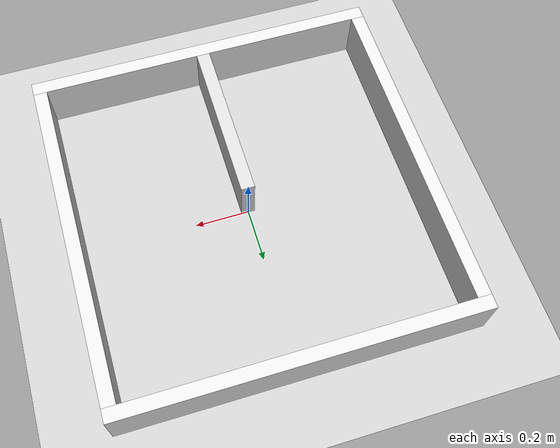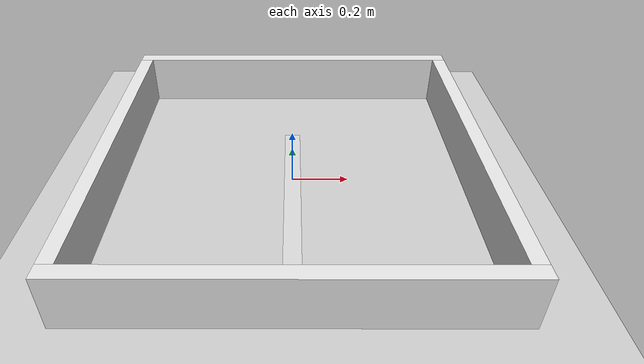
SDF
<?xml version="1.0" ?>
<sdf version="1.9">
  <world name="hermes_world">

    <!-- ── Core Gazebo Harmonic system plugins ───────────────────────────── -->
    <plugin filename="gz-sim-physics-system"
            name="gz::sim::systems::Physics"/>
    <plugin filename="gz-sim-user-commands-system"
            name="gz::sim::systems::UserCommands"/>
    <plugin filename="gz-sim-scene-broadcaster-system"
            name="gz::sim::systems::SceneBroadcaster"/>
    <!-- Sensors plugin: required for LiDAR -->
    <plugin filename="gz-sim-sensors-system"
            name="gz::sim::systems::Sensors"/>
    <plugin filename="gz-sim-contact-system"
            name="gz::sim::systems::Contact"/>

    <!-- ── Physics ───────────────────────────────────────────────────────── -->
    <physics name="1ms" type="ignored">
      <max_step_size>0.001</max_step_size>
      <real_time_factor>1.0</real_time_factor>
    </physics>

    <!-- ── Gravity ───────────────────────────────────────────────────────── -->
    <gravity>0 0 -9.8</gravity>

    <!-- ── Lighting ──────────────────────────────────────────────────────── -->
    <light type="directional" name="sun">
      <cast_shadows>true</cast_shadows>
      <pose>0 0 10 0 0 0</pose>
      <diffuse>0.8 0.8 0.8 1</diffuse>
      <specular>0.2 0.2 0.2 1</specular>
      <attenuation>
        <range>1000</range>
        <constant>0.9</constant>
        <linear>0.01</linear>
        <quadratic>0.001</quadratic>
      </attenuation>
      <direction>-0.5 0.1 -0.9</direction>
    </light>

    <!-- ── Ground plane ──────────────────────────────────────────────────── -->
    <model name="ground_plane">
      <static>true</static>
      <link name="link">
        <collision name="collision">
          <geometry>
            <plane>
              <normal>0 0 1</normal>
              <size>20 20</size>
            </plane>
          </geometry>
          <surface>
            <friction>
              <ode>
                <mu>100</mu>
                <mu2>50</mu2>
              </ode>
            </friction>
          </surface>
        </collision>
        <visual name="visual">
          <geometry>
            <plane>
              <normal>0 0 1</normal>
              <size>20 20</size>
            </plane>
          </geometry>
          <material>
            <ambient>0.8 0.8 0.8 1</ambient>
            <diffuse>0.8 0.8 0.8 1</diffuse>
            <specular>0.8 0.8 0.8 1</specular>
          </material>
        </visual>
      </link>
    </model>

    <!-- North wall  y = +0.635 -->
    <model name="wall_north">
      <static>true</static>
      <pose>0 0.635 0.0955 0 0 0</pose>
      <link name="link">
        <collision name="collision">
          <geometry><box><size>1.32 0.05 0.191</size></box></geometry>
        </collision>
        <visual name="visual">
          <geometry><box><size>1.32 0.05 0.191</size></box></geometry>
          <material><ambient>0.9 0.9 0.9 1</ambient><diffuse>0.9 0.9 0.9 1</diffuse></material>
        </visual>
      </link>
    </model>

    <!-- South wall  y = -0.635 -->
    <model name="wall_south">
      <static>true</static>
      <pose>0 -0.635 0.0955 0 0 0</pose>
      <link name="link">
        <collision name="collision">
          <geometry><box><size>1.32 0.05 0.191</size></box></geometry>
        </collision>
        <visual name="visual">
          <geometry><box><size>1.32 0.05 0.191</size></box></geometry>
          <material><ambient>0.9 0.9 0.9 1</ambient><diffuse>0.9 0.9 0.9 1</diffuse></material>
        </visual>
      </link>
    </model>

    <!-- East wall  x = +0.635 -->
    <model name="wall_east">
      <static>true</static>
      <pose>0.635 0 0.0955 0 0 0</pose>
      <link name="link">
        <collision name="collision">
          <geometry><box><size>0.05 1.22 0.191</size></box></geometry>
        </collision>
        <visual name="visual">
          <geometry><box><size>0.05 1.22 0.191</size></box></geometry>
          <material><ambient>0.9 0.9 0.9 1</ambient><diffuse>0.9 0.9 0.9 1</diffuse></material>
        </visual>
      </link>
    </model>

    <!-- West wall  x = -0.635 -->
    <model name="wall_west">
      <static>true</static>
      <pose>-0.635 0 0.0955 0 0 0</pose>
      <link name="link">
        <collision name="collision">
          <geometry><box><size>0.05 1.22 0.191</size></box></geometry>
        </collision>
        <visual name="visual">
          <geometry><box><size>0.05 1.22 0.191</size></box></geometry>
          <material><ambient>0.9 0.9 0.9 1</ambient><diffuse>0.9 0.9 0.9 1</diffuse></material>
        </visual>
      </link>
    </model>

    <!-- Central divider (south → mid, attached to south outer wall) -->
    <model name="divider_centre">
      <static>true</static>
      <pose>0 -0.305 0.0955 0 0 0</pose>
      <link name="link">
        <collision name="collision">
          <geometry><box><size>0.05 0.610 0.191</size></box></geometry>
        </collision>
        <visual name="visual">
          <geometry><box><size>0.05 0.610 0.191</size></box></geometry>
          <material><ambient>0.85 0.85 0.85 1</ambient><diffuse>0.85 0.85 0.85 1</diffuse></material>
        </visual>
      </link>
    </model>

  </world>
</sdf>
